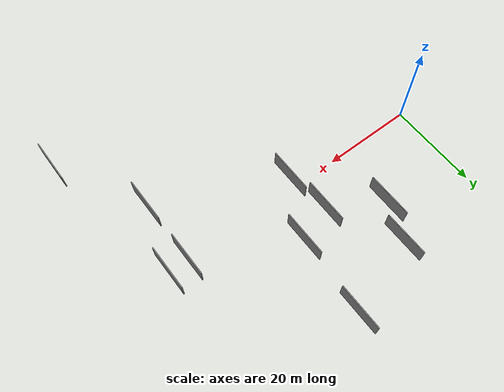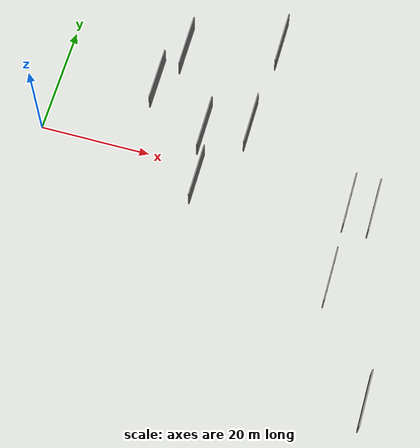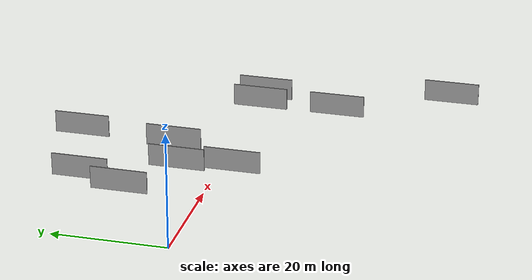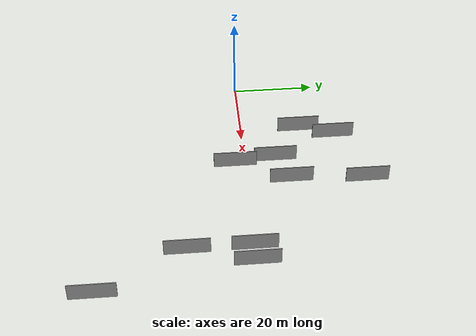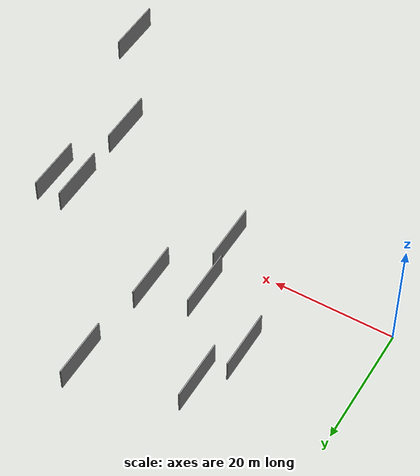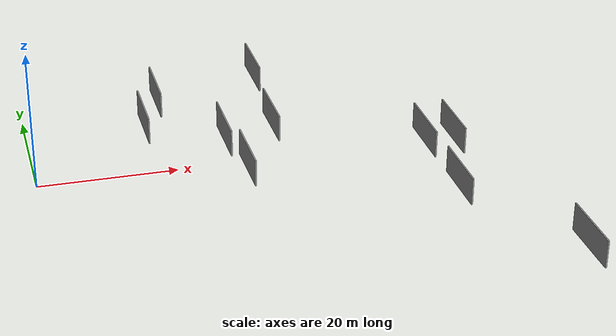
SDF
<sdf version="1.6">
 <world name="default">
  <scene>
   <sky><clouds><speed>12</speed></clouds></sky>
   <ambient>0.4 0.4 0.4 1</ambient>
   <background>0.7 0.7 0.7 1</background>
   <shadows>1</shadows>
  </scene>
  <gravity>0 0 -9.8066</gravity>
  <magnetic_field>6e-06 2.3e-05 -4.2e-05</magnetic_field>
  <physics default="0" name="default_physics" type="ode">
   <ode>
    <solver>
     <type>quick</type>
     <iters>10</iters>
     <sor>1.0</sor>
     <use_dynamic_moi_rescaling>0</use_dynamic_moi_rescaling>
    </solver>
    <constraints>
     <cfm>0</cfm>
     <erp>0.2</erp>
     <contact_max_correcting_vel>100</contact_max_correcting_vel>
     <contact_surface_layer>0.001</contact_surface_layer>
    </constraints>
   </ode>
   <max_step_size>0.004</max_step_size>
   <real_time_factor>1</real_time_factor>
   <real_time_update_rate>250</real_time_update_rate>
  </physics>
  <light name="sun" type="directional">
   <pose>0 0 10 0 0 0</pose>
   <diffuse>0.8 0.8 0.8 1</diffuse>
   <specular>0.2 0.2 0.2 1</specular>
   <attenuation>
    <range>1000</range>
    <constant>0.9</constant>
    <linear>0.01</linear>
    <quadratic>0.001</quadratic>
   </attenuation>
   <direction>-0.5 0.1 -0.9</direction>
  </light>
  <model name="grey_wall_1">
   <static>1</static>
   <pose>56.7892 -14.7538 0.0 0.000000 0.000000 1.570796</pose>
   <link name="link">
    <pose>0 0 2.00 0 0 0</pose>
    <collision name="collision"><geometry><box><size>10.00 0.2 4.00</size></box></geometry></collision>
    <visual name="visual">
     <cast_shadows>0</cast_shadows>
     <geometry><box><size>10.00 0.2 4.00</size></box></geometry>
     <material>
      <script>
       <uri>model://grey_wall/materials/scripts</uri>
       <uri>model://grey_wall/materials/textures</uri>
       <name>vrc/grey_wall</name>
      </script>
     </material>
    </visual>
   </link>
  </model>
  <model name="grey_wall_2">
   <static>1</static>
   <pose>29.5655 -2.3470 0.0 0.000000 0.000000 1.570796</pose>
   <link name="link">
    <pose>0 0 2.00 0 0 0</pose>
    <collision name="collision"><geometry><box><size>10.00 0.2 4.00</size></box></geometry></collision>
    <visual name="visual">
     <cast_shadows>0</cast_shadows>
     <geometry><box><size>10.00 0.2 4.00</size></box></geometry>
     <material>
      <script>
       <uri>model://grey_wall/materials/scripts</uri>
       <uri>model://grey_wall/materials/textures</uri>
       <name>vrc/grey_wall</name>
      </script>
     </material>
    </visual>
   </link>
  </model>
  <model name="grey_wall_3">
   <static>1</static>
   <pose>20.6899 22.1870 0.0 0.000000 0.000000 1.570796</pose>
   <link name="link">
    <pose>0 0 2.00 0 0 0</pose>
    <collision name="collision"><geometry><box><size>10.00 0.2 4.00</size></box></geometry></collision>
    <visual name="visual">
     <cast_shadows>0</cast_shadows>
     <geometry><box><size>10.00 0.2 4.00</size></box></geometry>
     <material>
      <script>
       <uri>model://grey_wall/materials/scripts</uri>
       <uri>model://grey_wall/materials/textures</uri>
       <name>vrc/grey_wall</name>
      </script>
     </material>
    </visual>
   </link>
  </model>
  <model name="grey_wall_4">
   <static>1</static>
   <pose>36.1040 10.1531 0.0 0.000000 0.000000 1.570796</pose>
   <link name="link">
    <pose>0 0 2.00 0 0 0</pose>
    <collision name="collision"><geometry><box><size>10.00 0.2 4.00</size></box></geometry></collision>
    <visual name="visual">
     <cast_shadows>0</cast_shadows>
     <geometry><box><size>10.00 0.2 4.00</size></box></geometry>
     <material>
      <script>
       <uri>model://grey_wall/materials/scripts</uri>
       <uri>model://grey_wall/materials/textures</uri>
       <name>vrc/grey_wall</name>
      </script>
     </material>
    </visual>
   </link>
  </model>
  <model name="grey_wall_5">
   <static>1</static>
   <pose>37.3202 27.5587 0.0 0.000000 0.000000 1.570796</pose>
   <link name="link">
    <pose>0 0 2.00 0 0 0</pose>
    <collision name="collision"><geometry><box><size>10.00 0.2 4.00</size></box></geometry></collision>
    <visual name="visual">
     <cast_shadows>0</cast_shadows>
     <geometry><box><size>10.00 0.2 4.00</size></box></geometry>
     <material>
      <script>
       <uri>model://grey_wall/materials/scripts</uri>
       <uri>model://grey_wall/materials/textures</uri>
       <name>vrc/grey_wall</name>
      </script>
     </material>
    </visual>
   </link>
  </model>
  <model name="grey_wall_6">
   <static>1</static>
   <pose>56.6671 -0.3462 0.0 0.000000 0.000000 1.570796</pose>
   <link name="link">
    <pose>0 0 2.00 0 0 0</pose>
    <collision name="collision"><geometry><box><size>10.00 0.2 4.00</size></box></geometry></collision>
    <visual name="visual">
     <cast_shadows>0</cast_shadows>
     <geometry><box><size>10.00 0.2 4.00</size></box></geometry>
     <material>
      <script>
       <uri>model://grey_wall/materials/scripts</uri>
       <uri>model://grey_wall/materials/textures</uri>
       <name>vrc/grey_wall</name>
      </script>
     </material>
    </visual>
   </link>
  </model>
  <model name="grey_wall_7">
   <static>1</static>
   <pose>61.0981 -0.2312 0.0 0.000000 0.000000 1.570796</pose>
   <link name="link">
    <pose>0 0 2.00 0 0 0</pose>
    <collision name="collision"><geometry><box><size>10.00 0.2 4.00</size></box></geometry></collision>
    <visual name="visual">
     <cast_shadows>0</cast_shadows>
     <geometry><box><size>10.00 0.2 4.00</size></box></geometry>
     <material>
      <script>
       <uri>model://grey_wall/materials/scripts</uri>
       <uri>model://grey_wall/materials/textures</uri>
       <name>vrc/grey_wall</name>
      </script>
     </material>
    </visual>
   </link>
  </model>
  <model name="grey_wall_8">
   <static>1</static>
   <pose>67.4405 -34.1734 0.0 0.000000 0.000000 1.570796</pose>
   <link name="link">
    <pose>0 0 2.00 0 0 0</pose>
    <collision name="collision"><geometry><box><size>10.00 0.2 4.00</size></box></geometry></collision>
    <visual name="visual">
     <cast_shadows>0</cast_shadows>
     <geometry><box><size>10.00 0.2 4.00</size></box></geometry>
     <material>
      <script>
       <uri>model://grey_wall/materials/scripts</uri>
       <uri>model://grey_wall/materials/textures</uri>
       <name>vrc/grey_wall</name>
      </script>
     </material>
    </visual>
   </link>
  </model>
  <model name="grey_wall_9">
   <static>1</static>
   <pose>28.2876 7.2738 0.0 0.000000 0.000000 1.570796</pose>
   <link name="link">
    <pose>0 0 2.00 0 0 0</pose>
    <collision name="collision"><geometry><box><size>10.00 0.2 4.00</size></box></geometry></collision>
    <visual name="visual">
     <cast_shadows>0</cast_shadows>
     <geometry><box><size>10.00 0.2 4.00</size></box></geometry>
     <material>
      <script>
       <uri>model://grey_wall/materials/scripts</uri>
       <uri>model://grey_wall/materials/textures</uri>
       <name>vrc/grey_wall</name>
      </script>
     </material>
    </visual>
   </link>
  </model>
  <model name="grey_wall_10">
   <static>1</static>
   <pose>17.4620 14.1149 0.0 0.000000 0.000000 1.570796</pose>
   <link name="link">
    <pose>0 0 2.00 0 0 0</pose>
    <collision name="collision"><geometry><box><size>10.00 0.2 4.00</size></box></geometry></collision>
    <visual name="visual">
     <cast_shadows>0</cast_shadows>
     <geometry><box><size>10.00 0.2 4.00</size></box></geometry>
     <material>
      <script>
       <uri>model://grey_wall/materials/scripts</uri>
       <uri>model://grey_wall/materials/textures</uri>
       <name>vrc/grey_wall</name>
      </script>
     </material>
    </visual>
   </link>
  </model>
 </world>
</sdf>
